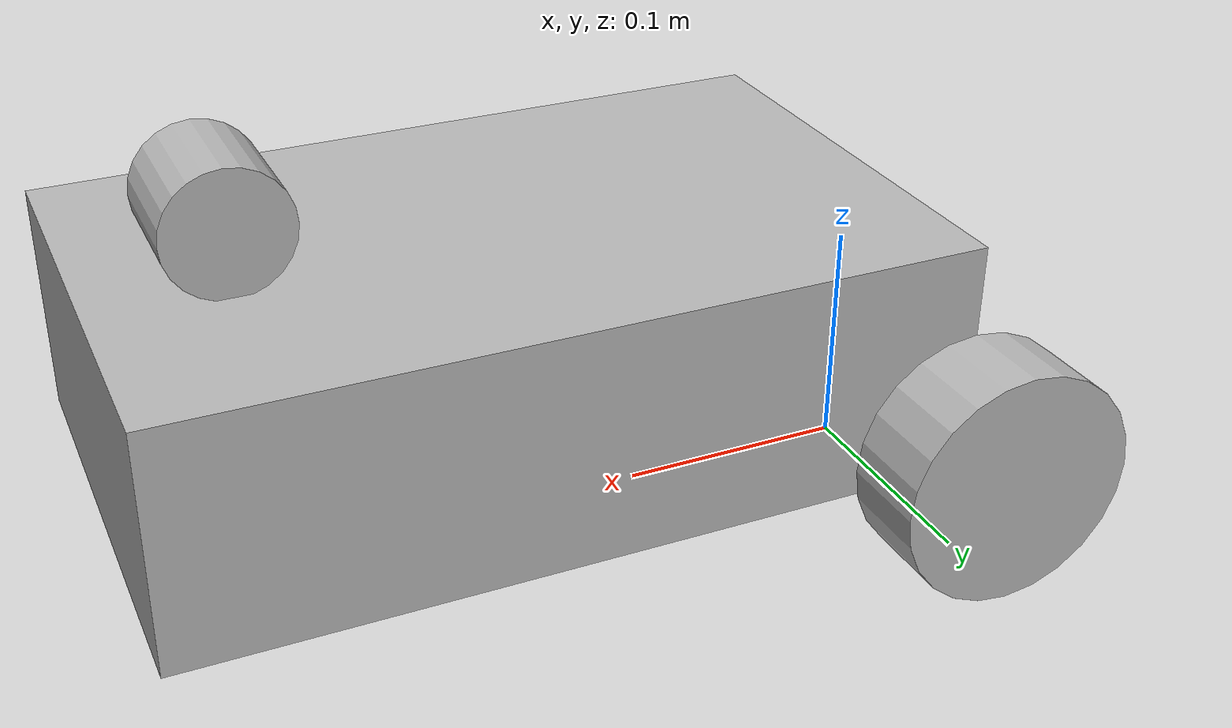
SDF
<?xml version="1.0"?>
<sdf version='1.7'>
  <model name='racecar'>
    <link name='base_link'>
      <inertial>
        <pose>0.091667 0 0.088867 0 -0 0</pose>
        <mass>3</mass>
        <inertia>
          <ixx>3.03781</ixx>
          <ixy>0</ixy>
          <ixz>-0.0209367</ixz>
          <iyy>3.05911</iyy>
          <iyz>0</iyz>
          <izz>3.07953</izz>
        </inertia>
      </inertial>
      <collision name='base_link_collision'>
        <pose>0.1651 0 0.09 0 -0 0</pose>
        <geometry>
          <box>
            <size>0.3302 0.2032 0.1</size>
          </box>
        </geometry>
      </collision>
      <collision name='base_link_fixed_joint_lump__back_left_wheel_collision_1'>
        <pose>0 0.12065 0.0508 1.5708 -0 0</pose>
        <geometry>
          <cylinder>
            <length>0.0381</length>
            <radius>0.0508</radius>
          </cylinder>
        </geometry>
      </collision>
      <collision name='base_link_fixed_joint_lump__back_right_wheel_collision_2'>
        <pose>0 -0.12065 0.0508 1.5708 -0 0</pose>
        <geometry>
          <cylinder>
            <length>0.0381</length>
            <radius>0.0508</radius>
          </cylinder>
        </geometry>
      </collision>
      <collision name='base_link_fixed_joint_lump__laser_model_collision_3'>
        <pose>0.275 0 0.165 1.5708 -0 0</pose>
        <geometry>
          <cylinder>
            <length>0.05</length>
            <radius>0.026</radius>
          </cylinder>
        </geometry>
      </collision>
      <visual name='base_link_visual'>
        <pose>0.1651 0 0.09 0 -0 0</pose>
        <geometry>
          <box>
            <size>0.3302 0.2032 0.1</size>
          </box>
        </geometry>
      </visual>
      <visual name='base_link_fixed_joint_lump__back_left_wheel_visual_1'>
        <pose>0 0.12065 0.0508 1.5708 -0 0</pose>
        <geometry>
          <cylinder>
            <length>0.0381</length>
            <radius>0.0508</radius>
          </cylinder>
        </geometry>
      </visual>
      <visual name='base_link_fixed_joint_lump__back_right_wheel_visual_2'>
        <pose>0 -0.12065 0.0508 1.5708 -0 0</pose>
        <geometry>
          <cylinder>
            <length>0.0381</length>
            <radius>0.0508</radius>
          </cylinder>
        </geometry>
      </visual>
      <visual name='base_link_fixed_joint_lump__laser_model_visual_3'>
        <pose>0.275 0 0.165 1.5708 -0 0</pose>
        <geometry>
          <cylinder>
            <length>0.05</length>
            <radius>0.026</radius>
          </cylinder>
        </geometry>
      </visual>
    </link>
  </model>
</sdf>
